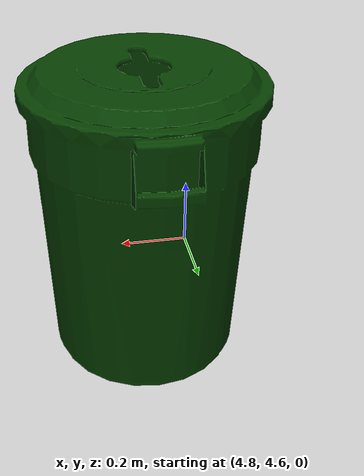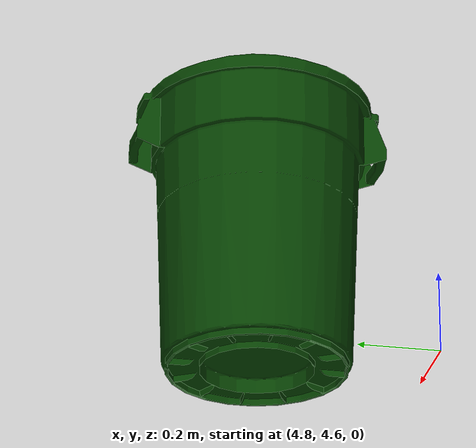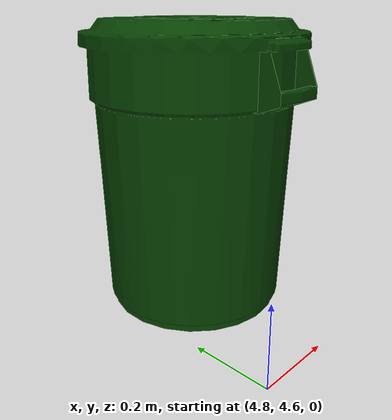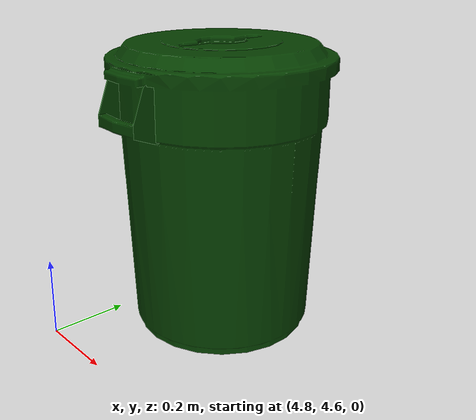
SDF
<?xml version='1.0'?>
<sdf version='1.6'>
    <model name='trash_can'>
      <link name='link'>
        <pose frame=''>5 5 0 0 -0 0</pose>
        <inertial>
          <pose frame=''>0 0 0.3683 0 -0 0</pose>
          <mass>4.83076</mass>
          <inertia>
            <ixx>0.281534</ixx>
            <ixy>0</ixy>
            <ixz>0</ixz>
            <iyy>0.281534</iyy>
            <iyz>0</iyz>
            <izz>0.126223</izz>
          </inertia>
        </inertial>
        <visual name='visual'>
          <geometry>
            <mesh>
              <uri>model://first_2015_trash_can/meshes/trash_can.dae</uri>
            </mesh>
          </geometry>
        </visual>
        <collision name='collision'>
          <geometry>
            <mesh>
              <uri>model://first_2015_trash_can/meshes/trash_can.dae</uri>
            </mesh>
          </geometry>
        </collision>
      </link>
    </model>
</sdf>
